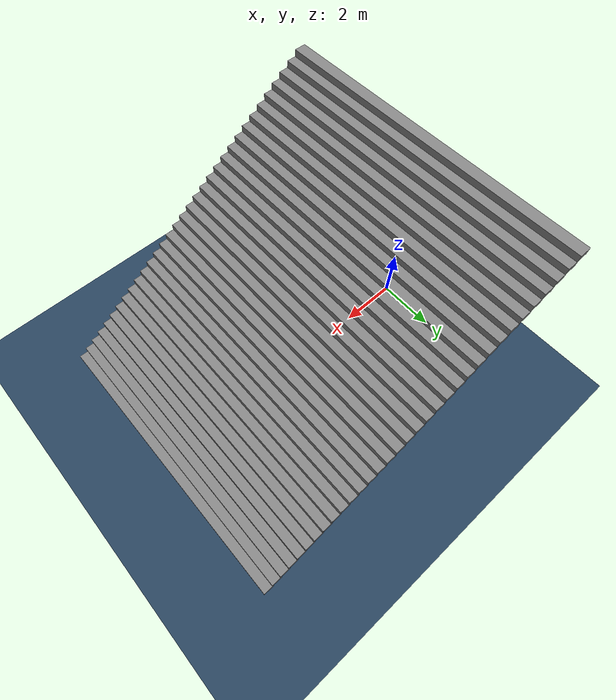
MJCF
<mujoco model="stairs_down_10">
  <!-- Terrain Type: stairs_down, Level: 10, Stairs step height: 0.2300 -->
  <statistic center="0 0 0.1" extent="0.8" />
  <visual>
    <headlight diffuse="0.6 0.6 0.6" ambient="0.3 0.3 0.3" specular="0 0 0" />
    <rgba haze="0.15 0.25 0.35 1" />
    <global azimuth="-130" elevation="-20" />
  </visual>
  <asset>
    <texture type="skybox" builtin="gradient" rgb1="0.3 0.5 0.7" rgb2="0 0 0" width="512" height="3072" />
    <texture type="2d" name="groundplane" builtin="checker" mark="edge" rgb1="0.2 0.3 0.4" rgb2="0.1 0.2 0.3" markrgb="0.8 0.8 0.8" width="300" height="300" />
    <material name="groundplane" texture="groundplane" texuniform="true" texrepeat="5 5" reflectance="0.0" />
  </asset>
  <worldbody>
    <light pos="0 0 1.5" dir="0 0 -1" directional="true" />
    <geom name="floor" size="0 0 0.05" type="plane" material="groundplane" />
    <geom pos="0.155 0.0 7.4750000000000005" type="box" size="0.186 5.0 0.115" quat="1.0 0.0 0.0 0.0" />
    <geom pos="0.46499999999999997 0.0 7.245" type="box" size="0.186 5.0 0.115" quat="1.0 0.0 0.0 0.0" />
    <geom pos="0.7749999999999999 0.0 7.015" type="box" size="0.186 5.0 0.115" quat="1.0 0.0 0.0 0.0" />
    <geom pos="1.085 0.0 6.784999999999999" type="box" size="0.186 5.0 0.115" quat="1.0 0.0 0.0 0.0" />
    <geom pos="1.395 0.0 6.554999999999999" type="box" size="0.186 5.0 0.115" quat="1.0 0.0 0.0 0.0" />
    <geom pos="1.705 0.0 6.324999999999998" type="box" size="0.186 5.0 0.115" quat="1.0 0.0 0.0 0.0" />
    <geom pos="2.015 0.0 6.094999999999998" type="box" size="0.186 5.0 0.115" quat="1.0 0.0 0.0 0.0" />
    <geom pos="2.325 0.0 5.8649999999999975" type="box" size="0.186 5.0 0.115" quat="1.0 0.0 0.0 0.0" />
    <geom pos="2.6350000000000002 0.0 5.634999999999997" type="box" size="0.186 5.0 0.115" quat="1.0 0.0 0.0 0.0" />
    <geom pos="2.9450000000000003 0.0 5.404999999999997" type="box" size="0.186 5.0 0.115" quat="1.0 0.0 0.0 0.0" />
    <geom pos="3.2550000000000003 0.0 5.174999999999996" type="box" size="0.186 5.0 0.115" quat="1.0 0.0 0.0 0.0" />
    <geom pos="3.5650000000000004 0.0 4.944999999999996" type="box" size="0.186 5.0 0.115" quat="1.0 0.0 0.0 0.0" />
    <geom pos="3.8750000000000004 0.0 4.714999999999995" type="box" size="0.186 5.0 0.115" quat="1.0 0.0 0.0 0.0" />
    <geom pos="4.1850000000000005 0.0 4.484999999999995" type="box" size="0.186 5.0 0.115" quat="1.0 0.0 0.0 0.0" />
    <geom pos="4.495 0.0 4.254999999999995" type="box" size="0.186 5.0 0.115" quat="1.0 0.0 0.0 0.0" />
    <geom pos="4.805 0.0 4.024999999999994" type="box" size="0.186 5.0 0.115" quat="1.0 0.0 0.0 0.0" />
    <geom pos="5.114999999999999 0.0 3.794999999999994" type="box" size="0.186 5.0 0.115" quat="1.0 0.0 0.0 0.0" />
    <geom pos="5.424999999999999 0.0 3.564999999999994" type="box" size="0.186 5.0 0.115" quat="1.0 0.0 0.0 0.0" />
    <geom pos="5.7349999999999985 0.0 3.334999999999994" type="box" size="0.186 5.0 0.115" quat="1.0 0.0 0.0 0.0" />
    <geom pos="6.044999999999998 0.0 3.104999999999994" type="box" size="0.186 5.0 0.115" quat="1.0 0.0 0.0 0.0" />
    <geom pos="6.354999999999998 0.0 2.8749999999999942" type="box" size="0.186 5.0 0.115" quat="1.0 0.0 0.0 0.0" />
    <geom pos="6.664999999999997 0.0 2.6449999999999942" type="box" size="0.186 5.0 0.115" quat="1.0 0.0 0.0 0.0" />
    <geom pos="6.974999999999997 0.0 2.4149999999999943" type="box" size="0.186 5.0 0.115" quat="1.0 0.0 0.0 0.0" />
    <geom pos="7.284999999999997 0.0 2.1849999999999943" type="box" size="0.186 5.0 0.115" quat="1.0 0.0 0.0 0.0" />
    <geom pos="7.594999999999996 0.0 1.9549999999999943" type="box" size="0.186 5.0 0.115" quat="1.0 0.0 0.0 0.0" />
    <geom pos="7.904999999999996 0.0 1.7249999999999943" type="box" size="0.186 5.0 0.115" quat="1.0 0.0 0.0 0.0" />
    <geom pos="8.214999999999996 0.0 1.4949999999999943" type="box" size="0.186 5.0 0.115" quat="1.0 0.0 0.0 0.0" />
    <geom pos="8.524999999999997 0.0 1.2649999999999944" type="box" size="0.186 5.0 0.115" quat="1.0 0.0 0.0 0.0" />
    <geom pos="8.834999999999997 0.0 1.0349999999999944" type="box" size="0.186 5.0 0.115" quat="1.0 0.0 0.0 0.0" />
    <geom pos="9.144999999999998 0.0 0.8049999999999944" type="box" size="0.186 5.0 0.115" quat="1.0 0.0 0.0 0.0" />
    <geom pos="9.454999999999998 0.0 0.5749999999999944" type="box" size="0.186 5.0 0.115" quat="1.0 0.0 0.0 0.0" />
    <geom pos="9.764999999999999 0.0 0.3449999999999944" type="box" size="0.186 5.0 0.115" quat="1.0 0.0 0.0 0.0" />
    <geom pos="10.075 0.0 0.11499999999999441" type="box" size="0.186 5.0 0.115" quat="1.0 0.0 0.0 0.0" />
  </worldbody>
</mujoco>
